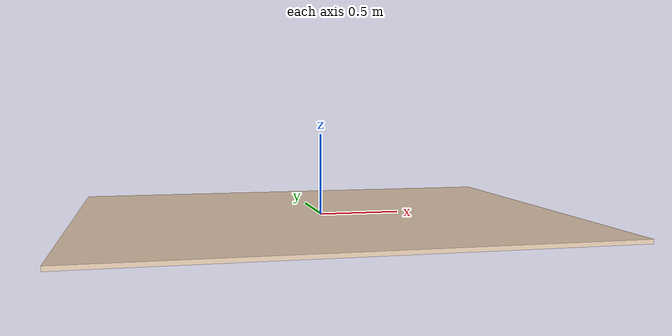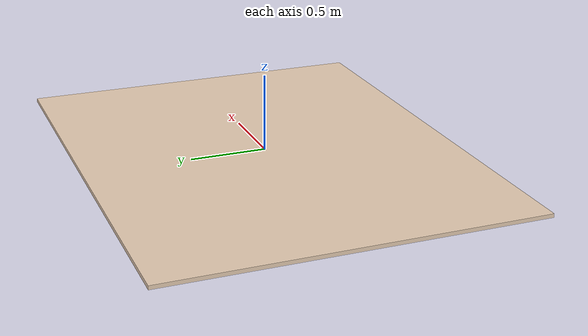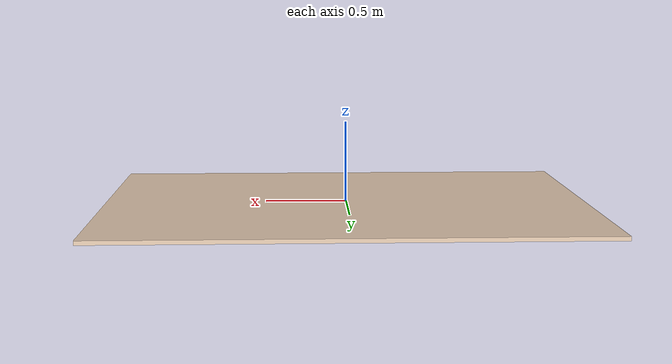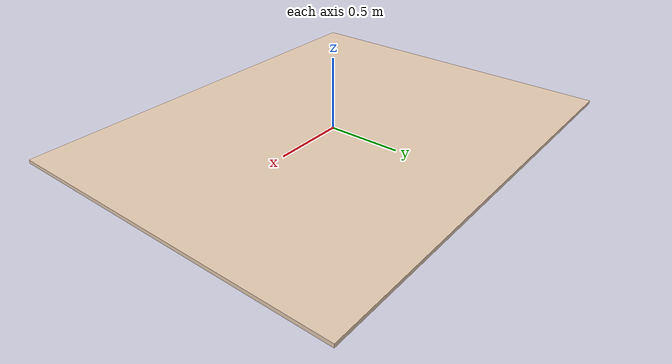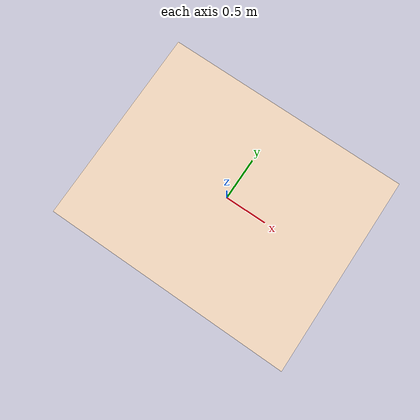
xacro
<?xml version="1.0"?>
<robot xmlns:xacro="http://www.ros.org/wiki/xacro" name="drawing_board">
  <!-- Drawing board: A flat surface for touch detection -->
  <link name="drawing_board">
    <visual>
      <origin xyz="0 0 -0.0125" rpy="0 0 0"/>
      <geometry>
        <box size="3.0 2.4 0.025"/>
      </geometry>
      <material name="board_material">
        <color rgba="0.9 0.8 0.7 1"/>
      </material>
    </visual>
    <collision>
      <origin xyz="0 0 -0.0125" rpy="0 0 0"/>
      <geometry>
        <box size="3.0 2.4 0.025"/>
      </geometry>
    </collision>
    <inertial>
      <origin xyz="0 0 -0.0125" rpy="0 0 0"/>
      <mass value="15.0"/>
      <inertia ixx="2.916666666666667" ixy="0" ixz="0" iyy="5.208333333333334" iyz="0" izz="4.583333333333334"/>
    </inertial>
  </link>
</robot>
